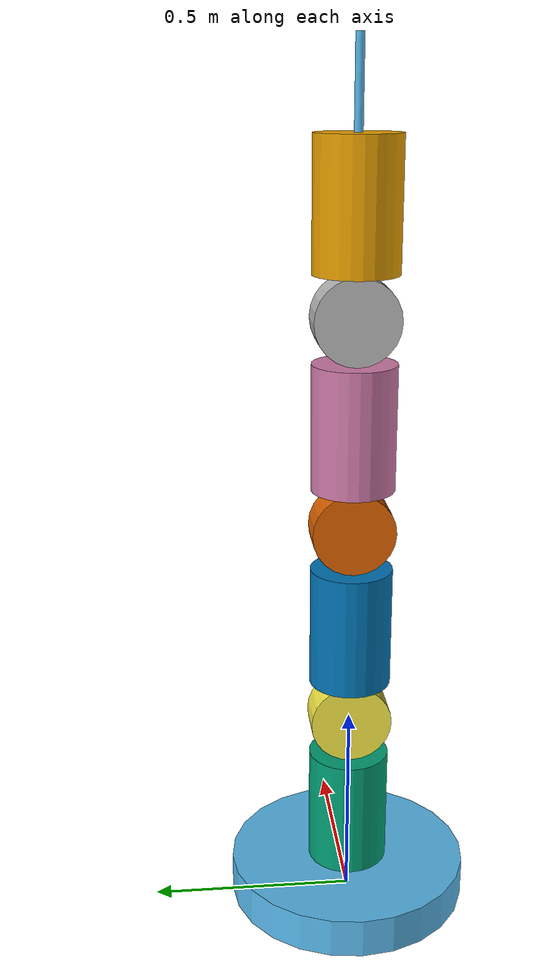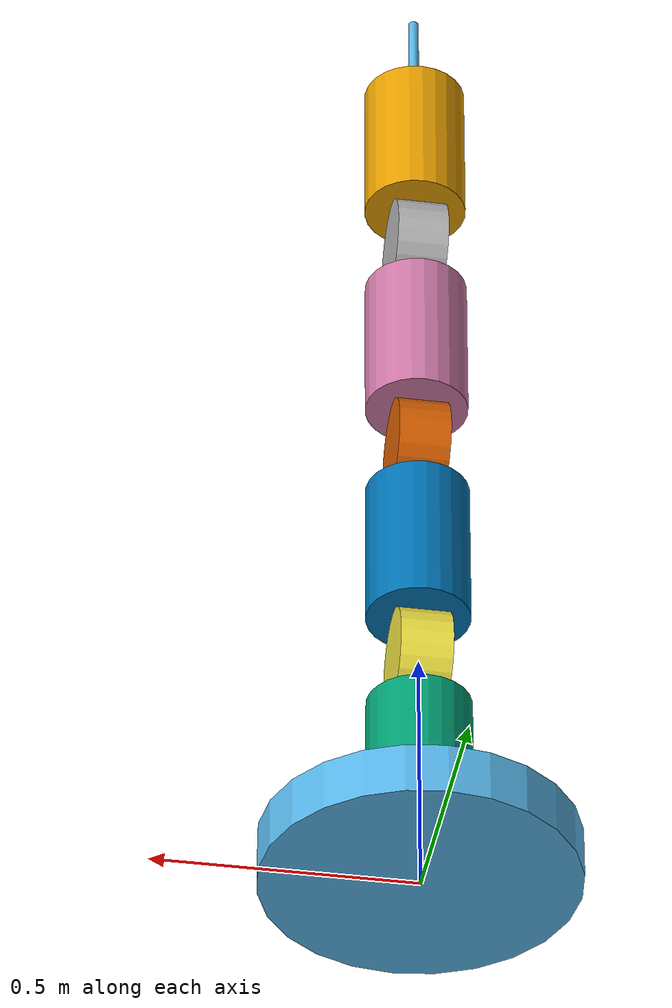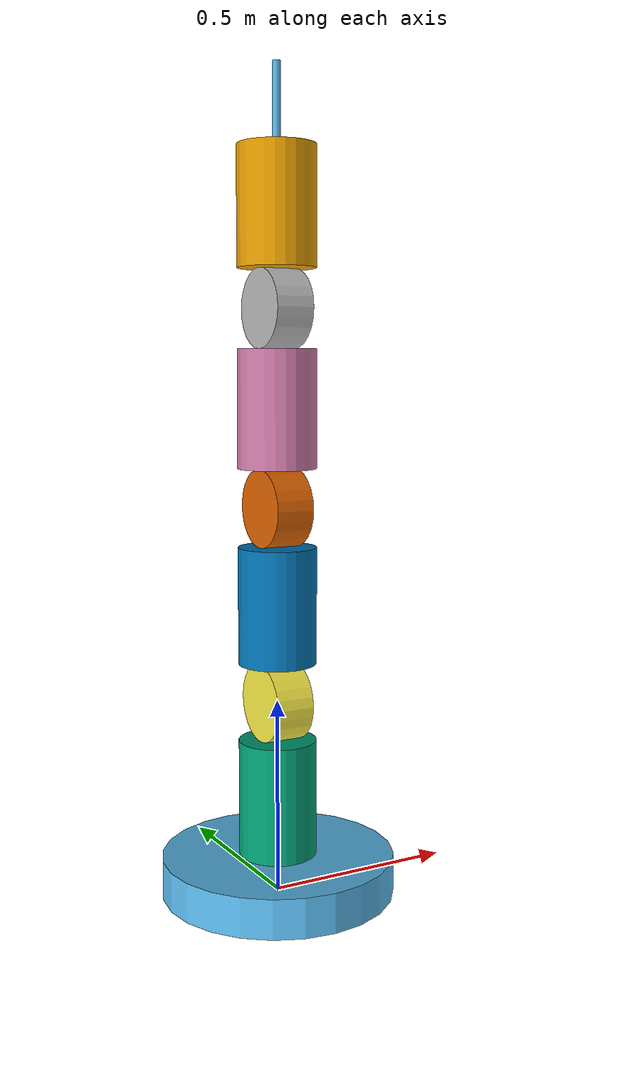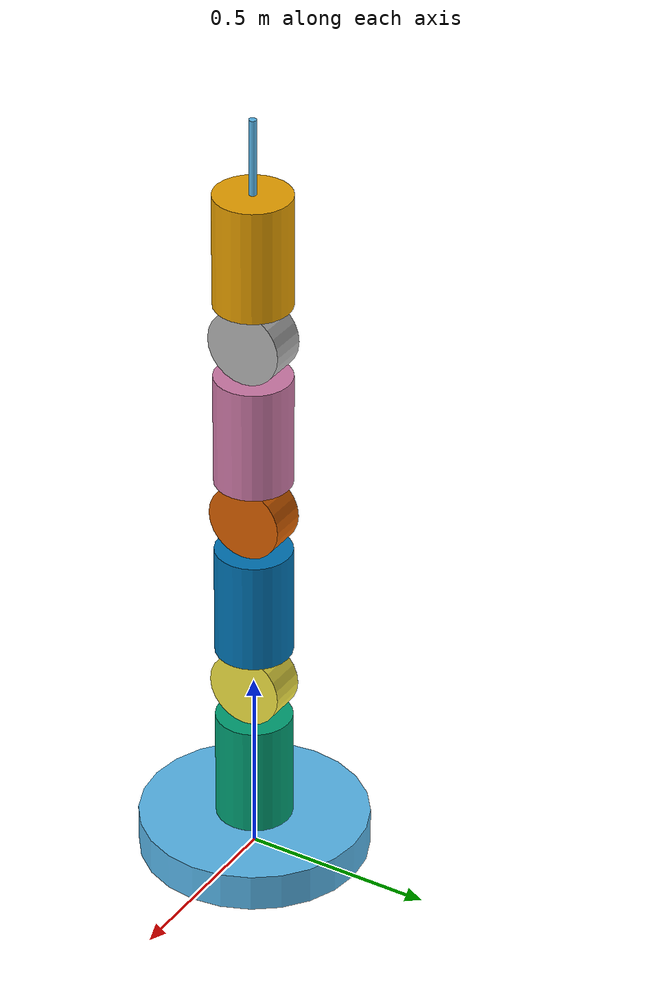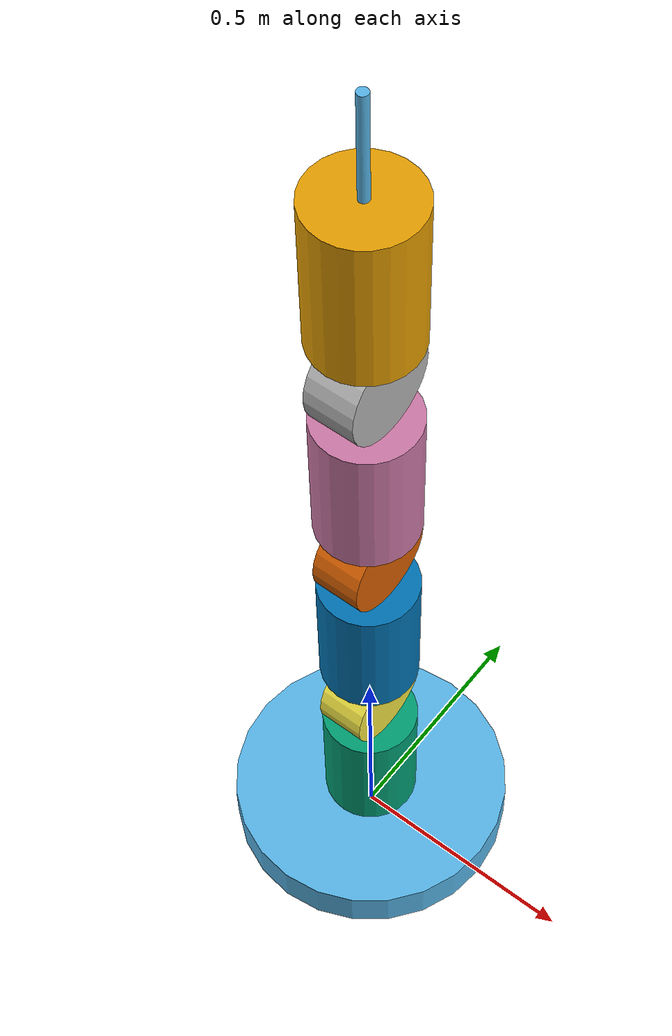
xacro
<?xml version='1.0'?>
<robot xmlns:xacro="http://www.ros.org/wiki/xacro" name="nLink">

  <xacro:macro name="addLink" params="id:='0' h:=0.3 r:=0.1 m:=1.0">
    <link name="${id}">
    <visual>
      <origin xyz="0 0 ${h/2.0}" rpy="0 0 0"/>
      <geometry>
        <cylinder length="${h}" radius="${r}"/>
      </geometry>
    </visual>
    <collision>
      <origin xyz="0 0 ${h/2.0}" rpy="0 0 0"/>
      <geometry>
        <cylinder length="${h}" radius="${r}"/>
      </geometry>
    </collision>
    <inertial>
      <origin rpy="0 0 0" xyz="0 0 ${h/2.0}"/>
      <mass value="${m}"/>
      <inertia ixx="${1/12 * m * (3 * r * r + h * h)}" ixy="0.0" ixz="0.0" iyy="${1/12*m*(3*r*r+h*h)}" iyz="0.0" izz="${1/2*m*r*r}"/>
    </inertial>
    </link>
  </xacro:macro>

  <xacro:macro name="addJoint" params="id:='0' type:='revolute' parent:='0' child:='1' axis:='1 0 0' rpy:='0 0 0' xyz:='0 0 0'">
    <joint name="joint${id}" type="${type}">
      <safety_controller k_position="100.0" k_velocity="40.0" soft_lower_limit="-2.8973" soft_upper_limit="2.8973"/>
      <origin rpy="${rpy}" xyz="${xyz}"/>
      <parent link="${parent}"/>
      <child link="${child}"/>
      <axis xyz="${axis}"/>
      <limit effort="87" lower="${-0.5*pi}" upper="${0.5*pi}" velocity="2.0"/>
      <dynamics damping="0.0" friction="0.0"/>
    </joint>
  </xacro:macro>

  <link name="world"/>
  <xacro:addLink id="base" h='0.1' r='0.3'/>
  <xacro:addLink id="link1" h='0.3' r='0.1'/>
  <xacro:addLink id="link2" h='0.1' r='0.1'/>
  <xacro:addLink id="link3" h='0.3' r='0.1'/>
  <xacro:addLink id="link4" h='0.1' r='0.1'/>
  <xacro:addLink id="link5" h='0.3' r='0.1'/>
  <xacro:addLink id="link6" h='0.1' r='0.1'/>
  <xacro:addLink id="link7" h='0.3' r='0.1'/>
  <xacro:addLink id="linkee" h='0.3' r='0.01'/>
  <xacro:addJoint id="worldBase" type="fixed" parent="world" child="base" axis="1 0 0" xyz="0 0 0.0"/>
  <xacro:addJoint id="joint0" parent="base" child="link1" axis="0 0 1" xyz="0 0 0.1"/>
  <xacro:addJoint id="joint1" parent="link1" child="link2" axis="0 0 1" xyz="-0.05 0 0.40" rpy='0 ${pi/2} 0'/>
  <xacro:addJoint id="joint2" parent="link2" child="link3" axis="0 0 1" xyz="-0.10 0 0.05" rpy='0 ${-pi/2} 0'/>
  <xacro:addJoint id="joint3" parent="link3" child="link4" axis="0 0 1" xyz="-0.05 0 0.40" rpy='0 ${pi/2} 0'/>
  <xacro:addJoint id="joint4" parent="link4" child="link5" axis="0 0 1" xyz="-0.10 0 0.05" rpy='0 ${-pi/2} 0'/>
  <xacro:addJoint id="joint5" parent="link5" child="link6" axis="0 0 1" xyz="-0.05 0 0.40" rpy='0 ${pi/2} 0'/>
  <xacro:addJoint id="joint6" parent="link6" child="link7" axis="0 0 1" xyz="-0.10 0 0.05" rpy='0 ${-pi/2} 0'/>
  <xacro:addJoint id="jointee" type="fixed" parent="link7" child="linkee" axis="0 0 1" xyz="-0.00 0 0.20" rpy='0 0 0'/>
</robot>
